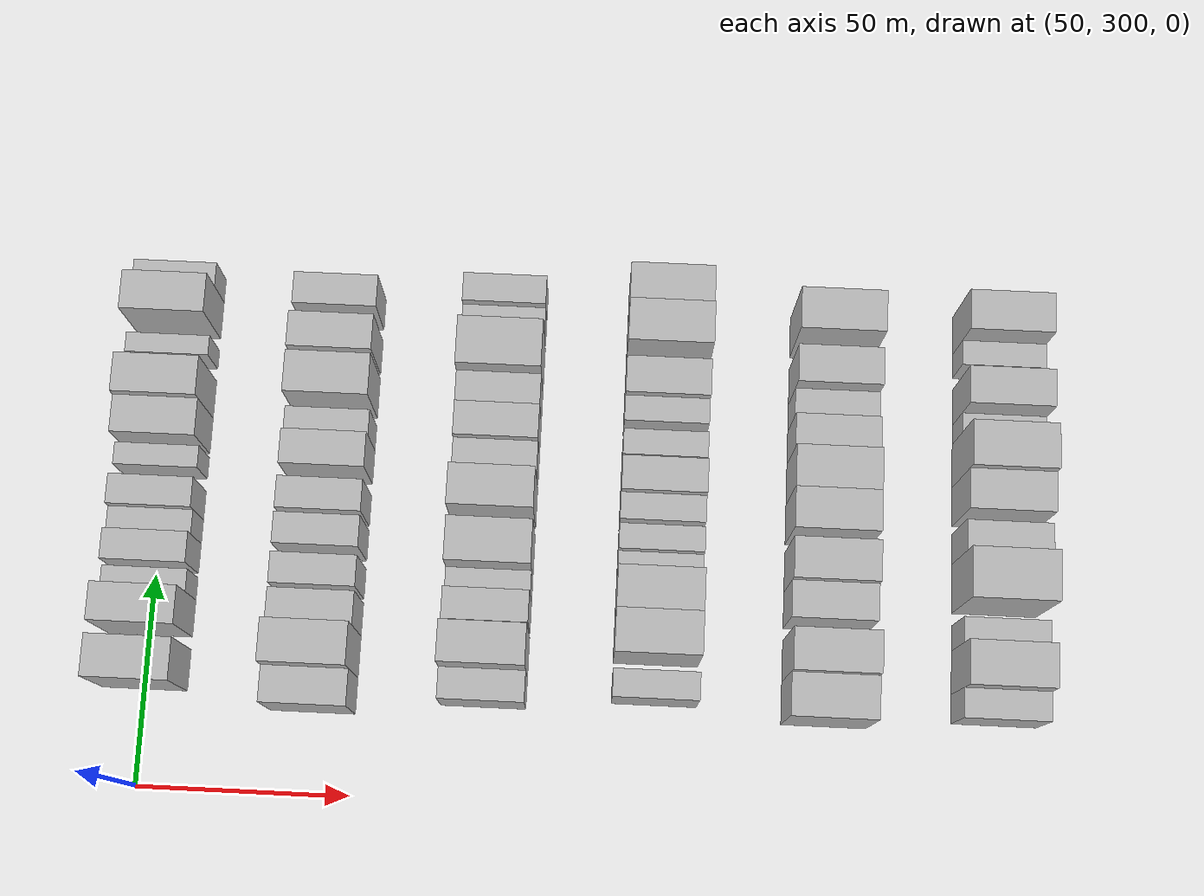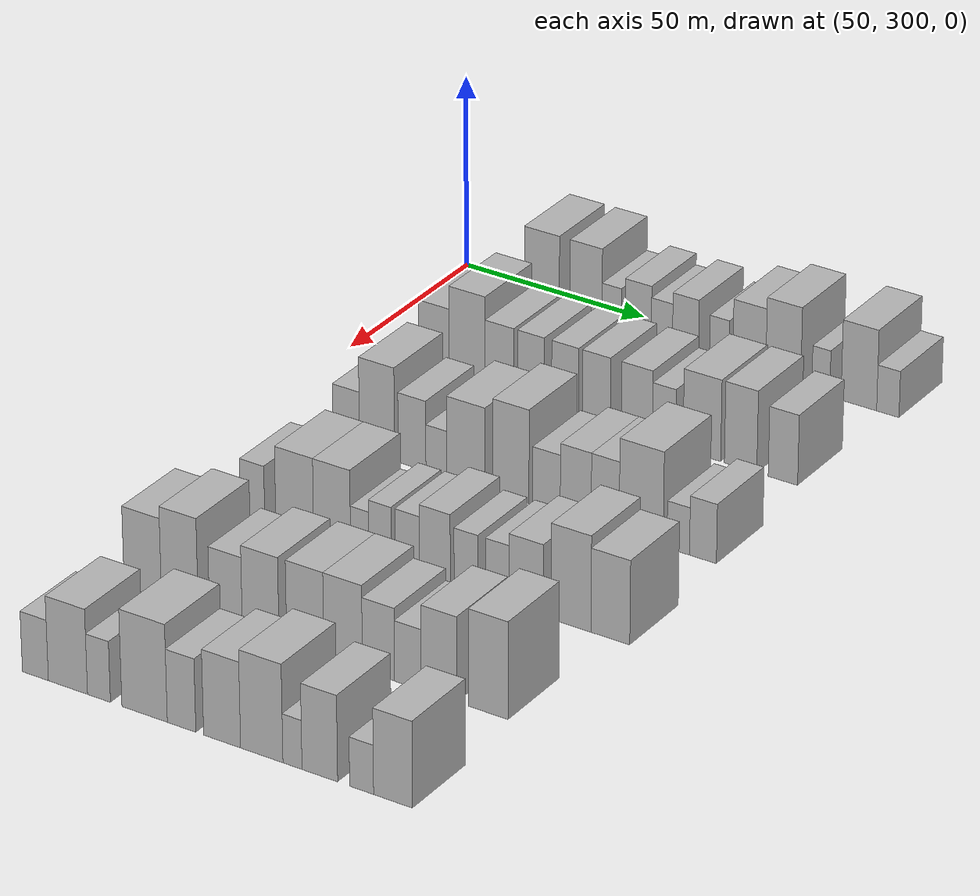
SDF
<sdf version="1.6">
 <world name="default">
  <model name="building_108">
   <static>1</static>
   <pose>50.0000 327.6701 0 0.000000 0.000000 0.000000</pose>
   <link name="link">
    <pose>0 0 10.50 0 0 0</pose>
    <collision name="collision"><geometry><box><size>20.0000 9.8355 21.0000</size></box></geometry></collision>
    <visual name="visual">
     <cast_shadows>0</cast_shadows>
     <geometry><box><size>20.0000 9.8355 21.0000</size></box></geometry>
     <material>
      <script>
       <uri>model://HANNAS_wall/materials/scripts</uri>
       <uri>model://HANNAS_wall/materials/textures</uri>
       <name>vrc/HANNAS_wall</name>
      </script>
     </material>
    </visual>
   </link>
  </model>
  <model name="building_109">
   <static>1</static>
   <pose>50.0000 340.0471 0 0.000000 0.000000 0.000000</pose>
   <link name="link">
    <pose>0 0 10.50 0 0 0</pose>
    <collision name="collision"><geometry><box><size>20.0000 8.9186 21.0000</size></box></geometry></collision>
    <visual name="visual">
     <cast_shadows>0</cast_shadows>
     <geometry><box><size>20.0000 8.9186 21.0000</size></box></geometry>
     <material>
      <script>
       <uri>model://HANNAS_wall/materials/scripts</uri>
       <uri>model://HANNAS_wall/materials/textures</uri>
       <name>vrc/HANNAS_wall</name>
      </script>
     </material>
    </visual>
   </link>
  </model>
  <model name="building_110">
   <static>1</static>
   <pose>50.0000 347.1937 0 0.000000 0.000000 0.000000</pose>
   <link name="link">
    <pose>0 0 6.00 0 0 0</pose>
    <collision name="collision"><geometry><box><size>20.0000 5.3746 12.0000</size></box></geometry></collision>
    <visual name="visual">
     <cast_shadows>0</cast_shadows>
     <geometry><box><size>20.0000 5.3746 12.0000</size></box></geometry>
     <material>
      <script>
       <uri>model://HANNAS_wall/materials/scripts</uri>
       <uri>model://HANNAS_wall/materials/textures</uri>
       <name>vrc/HANNAS_wall</name>
      </script>
     </material>
    </visual>
   </link>
  </model>
  <model name="building_111">
   <static>1</static>
   <pose>50.0000 354.5247 0 0.000000 0.000000 0.000000</pose>
   <link name="link">
    <pose>0 0 7.50 0 0 0</pose>
    <collision name="collision"><geometry><box><size>20.0000 7.2872 15.0000</size></box></geometry></collision>
    <visual name="visual">
     <cast_shadows>0</cast_shadows>
     <geometry><box><size>20.0000 7.2872 15.0000</size></box></geometry>
     <material>
      <script>
       <uri>model://HANNAS_wall/materials/scripts</uri>
       <uri>model://HANNAS_wall/materials/textures</uri>
       <name>vrc/HANNAS_wall</name>
      </script>
     </material>
    </visual>
   </link>
  </model>
  <model name="building_112">
   <static>1</static>
   <pose>50.0000 361.0859 0 0.000000 0.000000 0.000000</pose>
   <link name="link">
    <pose>0 0 6.00 0 0 0</pose>
    <collision name="collision"><geometry><box><size>20.0000 5.8353 12.0000</size></box></geometry></collision>
    <visual name="visual">
     <cast_shadows>0</cast_shadows>
     <geometry><box><size>20.0000 5.8353 12.0000</size></box></geometry>
     <material>
      <script>
       <uri>model://HANNAS_wall/materials/scripts</uri>
       <uri>model://HANNAS_wall/materials/textures</uri>
       <name>vrc/HANNAS_wall</name>
      </script>
     </material>
    </visual>
   </link>
  </model>
  <model name="building_113">
   <static>1</static>
   <pose>50.0000 367.5748 0 0.000000 0.000000 0.000000</pose>
   <link name="link">
    <pose>0 0 7.50 0 0 0</pose>
    <collision name="collision"><geometry><box><size>20.0000 7.1423 15.0000</size></box></geometry></collision>
    <visual name="visual">
     <cast_shadows>0</cast_shadows>
     <geometry><box><size>20.0000 7.1423 15.0000</size></box></geometry>
     <material>
      <script>
       <uri>model://HANNAS_wall/materials/scripts</uri>
       <uri>model://HANNAS_wall/materials/textures</uri>
       <name>vrc/HANNAS_wall</name>
      </script>
     </material>
    </visual>
   </link>
  </model>
  <model name="building_114">
   <static>1</static>
   <pose>50.0000 376.8160 0 0.000000 0.000000 0.000000</pose>
   <link name="link">
    <pose>0 0 6.00 0 0 0</pose>
    <collision name="collision"><geometry><box><size>20.0000 5.3402 12.0000</size></box></geometry></collision>
    <visual name="visual">
     <cast_shadows>0</cast_shadows>
     <geometry><box><size>20.0000 5.3402 12.0000</size></box></geometry>
     <material>
      <script>
       <uri>model://HANNAS_wall/materials/scripts</uri>
       <uri>model://HANNAS_wall/materials/textures</uri>
       <name>vrc/HANNAS_wall</name>
      </script>
     </material>
    </visual>
   </link>
  </model>
  <model name="building_115">
   <static>1</static>
   <pose>50.0000 384.9585 0 0.000000 0.000000 0.000000</pose>
   <link name="link">
    <pose>0 0 9.00 0 0 0</pose>
    <collision name="collision"><geometry><box><size>20.0000 8.9447 18.0000</size></box></geometry></collision>
    <visual name="visual">
     <cast_shadows>0</cast_shadows>
     <geometry><box><size>20.0000 8.9447 18.0000</size></box></geometry>
     <material>
      <script>
       <uri>model://HANNAS_wall/materials/scripts</uri>
       <uri>model://HANNAS_wall/materials/textures</uri>
       <name>vrc/HANNAS_wall</name>
      </script>
     </material>
    </visual>
   </link>
  </model>
  <model name="building_116">
   <static>1</static>
   <pose>50.0000 394.1420 0 0.000000 0.000000 0.000000</pose>
   <link name="link">
    <pose>0 0 10.50 0 0 0</pose>
    <collision name="collision"><geometry><box><size>20.0000 9.4224 21.0000</size></box></geometry></collision>
    <visual name="visual">
     <cast_shadows>0</cast_shadows>
     <geometry><box><size>20.0000 9.4224 21.0000</size></box></geometry>
     <material>
      <script>
       <uri>model://HANNAS_wall/materials/scripts</uri>
       <uri>model://HANNAS_wall/materials/textures</uri>
       <name>vrc/HANNAS_wall</name>
      </script>
     </material>
    </visual>
   </link>
  </model>
  <model name="building_117">
   <static>1</static>
   <pose>50.0000 404.2622 0 0.000000 0.000000 0.000000</pose>
   <link name="link">
    <pose>0 0 6.00 0 0 0</pose>
    <collision name="collision"><geometry><box><size>20.0000 4.8180 12.0000</size></box></geometry></collision>
    <visual name="visual">
     <cast_shadows>0</cast_shadows>
     <geometry><box><size>20.0000 4.8180 12.0000</size></box></geometry>
     <material>
      <script>
       <uri>model://HANNAS_wall/materials/scripts</uri>
       <uri>model://HANNAS_wall/materials/textures</uri>
       <name>vrc/HANNAS_wall</name>
      </script>
     </material>
    </visual>
   </link>
  </model>
  <model name="building_118">
   <static>1</static>
   <pose>50.0000 414.4103 0 0.000000 0.000000 0.000000</pose>
   <link name="link">
    <pose>0 0 10.50 0 0 0</pose>
    <collision name="collision"><geometry><box><size>20.0000 9.4782 21.0000</size></box></geometry></collision>
    <visual name="visual">
     <cast_shadows>0</cast_shadows>
     <geometry><box><size>20.0000 9.4782 21.0000</size></box></geometry>
     <material>
      <script>
       <uri>model://HANNAS_wall/materials/scripts</uri>
       <uri>model://HANNAS_wall/materials/textures</uri>
       <name>vrc/HANNAS_wall</name>
      </script>
     </material>
    </visual>
   </link>
  </model>
  <model name="building_119">
   <static>1</static>
   <pose>50.0000 422.1133 0 0.000000 0.000000 0.000000</pose>
   <link name="link">
    <pose>0 0 6.00 0 0 0</pose>
    <collision name="collision"><geometry><box><size>20.0000 5.9277 12.0000</size></box></geometry></collision>
    <visual name="visual">
     <cast_shadows>0</cast_shadows>
     <geometry><box><size>20.0000 5.9277 12.0000</size></box></geometry>
     <material>
      <script>
       <uri>model://HANNAS_wall/materials/scripts</uri>
       <uri>model://HANNAS_wall/materials/textures</uri>
       <name>vrc/HANNAS_wall</name>
      </script>
     </material>
    </visual>
   </link>
  </model>
  <model name="building_248">
   <static>1</static>
   <pose>90.0000 323.4488 0 0.000000 0.000000 0.000000</pose>
   <link name="link">
    <pose>0 0 9.00 0 0 0</pose>
    <collision name="collision"><geometry><box><size>20.0000 8.5177 18.0000</size></box></geometry></collision>
    <visual name="visual">
     <cast_shadows>0</cast_shadows>
     <geometry><box><size>20.0000 8.5177 18.0000</size></box></geometry>
     <material>
      <script>
       <uri>model://HANNAS_wall/materials/scripts</uri>
       <uri>model://HANNAS_wall/materials/textures</uri>
       <name>vrc/HANNAS_wall</name>
      </script>
     </material>
    </visual>
   </link>
  </model>
  <model name="building_249">
   <static>1</static>
   <pose>90.0000 332.6952 0 0.000000 0.000000 0.000000</pose>
   <link name="link">
    <pose>0 0 12.00 0 0 0</pose>
    <collision name="collision"><geometry><box><size>20.0000 9.9750 24.0000</size></box></geometry></collision>
    <visual name="visual">
     <cast_shadows>0</cast_shadows>
     <geometry><box><size>20.0000 9.9750 24.0000</size></box></geometry>
     <material>
      <script>
       <uri>model://HANNAS_wall/materials/scripts</uri>
       <uri>model://HANNAS_wall/materials/textures</uri>
       <name>vrc/HANNAS_wall</name>
      </script>
     </material>
    </visual>
   </link>
  </model>
  <model name="building_250">
   <static>1</static>
   <pose>90.0000 341.6424 0 0.000000 0.000000 0.000000</pose>
   <link name="link">
    <pose>0 0 9.00 0 0 0</pose>
    <collision name="collision"><geometry><box><size>20.0000 7.9195 18.0000</size></box></geometry></collision>
    <visual name="visual">
     <cast_shadows>0</cast_shadows>
     <geometry><box><size>20.0000 7.9195 18.0000</size></box></geometry>
     <material>
      <script>
       <uri>model://HANNAS_wall/materials/scripts</uri>
       <uri>model://HANNAS_wall/materials/textures</uri>
       <name>vrc/HANNAS_wall</name>
      </script>
     </material>
    </visual>
   </link>
  </model>
  <model name="building_251">
   <static>1</static>
   <pose>90.0000 350.2497 0 0.000000 0.000000 0.000000</pose>
   <link name="link">
    <pose>0 0 9.00 0 0 0</pose>
    <collision name="collision"><geometry><box><size>20.0000 7.2952 18.0000</size></box></geometry></collision>
    <visual name="visual">
     <cast_shadows>0</cast_shadows>
     <geometry><box><size>20.0000 7.2952 18.0000</size></box></geometry>
     <material>
      <script>
       <uri>model://HANNAS_wall/materials/scripts</uri>
       <uri>model://HANNAS_wall/materials/textures</uri>
       <name>vrc/HANNAS_wall</name>
      </script>
     </material>
    </visual>
   </link>
  </model>
  <model name="building_252">
   <static>1</static>
   <pose>90.0000 359.5843 0 0.000000 0.000000 0.000000</pose>
   <link name="link">
    <pose>0 0 9.00 0 0 0</pose>
    <collision name="collision"><geometry><box><size>20.0000 7.3740 18.0000</size></box></geometry></collision>
    <visual name="visual">
     <cast_shadows>0</cast_shadows>
     <geometry><box><size>20.0000 7.3740 18.0000</size></box></geometry>
     <material>
      <script>
       <uri>model://HANNAS_wall/materials/scripts</uri>
       <uri>model://HANNAS_wall/materials/textures</uri>
       <name>vrc/HANNAS_wall</name>
      </script>
     </material>
    </visual>
   </link>
  </model>
  <model name="building_253">
   <static>1</static>
   <pose>90.0000 368.0543 0 0.000000 0.000000 0.000000</pose>
   <link name="link">
    <pose>0 0 9.00 0 0 0</pose>
    <collision name="collision"><geometry><box><size>20.0000 7.5661 18.0000</size></box></geometry></collision>
    <visual name="visual">
     <cast_shadows>0</cast_shadows>
     <geometry><box><size>20.0000 7.5661 18.0000</size></box></geometry>
     <material>
      <script>
       <uri>model://HANNAS_wall/materials/scripts</uri>
       <uri>model://HANNAS_wall/materials/textures</uri>
       <name>vrc/HANNAS_wall</name>
      </script>
     </material>
    </visual>
   </link>
  </model>
  <model name="building_254">
   <static>1</static>
   <pose>90.0000 379.0158 0 0.000000 0.000000 0.000000</pose>
   <link name="link">
    <pose>0 0 9.00 0 0 0</pose>
    <collision name="collision"><geometry><box><size>20.0000 8.3568 18.0000</size></box></geometry></collision>
    <visual name="visual">
     <cast_shadows>0</cast_shadows>
     <geometry><box><size>20.0000 8.3568 18.0000</size></box></geometry>
     <material>
      <script>
       <uri>model://HANNAS_wall/materials/scripts</uri>
       <uri>model://HANNAS_wall/materials/textures</uri>
       <name>vrc/HANNAS_wall</name>
      </script>
     </material>
    </visual>
   </link>
  </model>
  <model name="building_255">
   <static>1</static>
   <pose>90.0000 386.2844 0 0.000000 0.000000 0.000000</pose>
   <link name="link">
    <pose>0 0 7.50 0 0 0</pose>
    <collision name="collision"><geometry><box><size>20.0000 6.1805 15.0000</size></box></geometry></collision>
    <visual name="visual">
     <cast_shadows>0</cast_shadows>
     <geometry><box><size>20.0000 6.1805 15.0000</size></box></geometry>
     <material>
      <script>
       <uri>model://HANNAS_wall/materials/scripts</uri>
       <uri>model://HANNAS_wall/materials/textures</uri>
       <name>vrc/HANNAS_wall</name>
      </script>
     </material>
    </visual>
   </link>
  </model>
  <model name="building_256">
   <static>1</static>
   <pose>90.0000 396.3751 0 0.000000 0.000000 0.000000</pose>
   <link name="link">
    <pose>0 0 10.50 0 0 0</pose>
    <collision name="collision"><geometry><box><size>20.0000 10.0008 21.0000</size></box></geometry></collision>
    <visual name="visual">
     <cast_shadows>0</cast_shadows>
     <geometry><box><size>20.0000 10.0008 21.0000</size></box></geometry>
     <material>
      <script>
       <uri>model://HANNAS_wall/materials/scripts</uri>
       <uri>model://HANNAS_wall/materials/textures</uri>
       <name>vrc/HANNAS_wall</name>
      </script>
     </material>
    </visual>
   </link>
  </model>
  <model name="building_257">
   <static>1</static>
   <pose>90.0000 406.6495 0 0.000000 0.000000 0.000000</pose>
   <link name="link">
    <pose>0 0 10.50 0 0 0</pose>
    <collision name="collision"><geometry><box><size>20.0000 8.5481 21.0000</size></box></geometry></collision>
    <visual name="visual">
     <cast_shadows>0</cast_shadows>
     <geometry><box><size>20.0000 8.5481 21.0000</size></box></geometry>
     <material>
      <script>
       <uri>model://HANNAS_wall/materials/scripts</uri>
       <uri>model://HANNAS_wall/materials/textures</uri>
       <name>vrc/HANNAS_wall</name>
      </script>
     </material>
    </visual>
   </link>
  </model>
  <model name="building_258">
   <static>1</static>
   <pose>90.0000 417.7794 0 0.000000 0.000000 0.000000</pose>
   <link name="link">
    <pose>0 0 9.00 0 0 0</pose>
    <collision name="collision"><geometry><box><size>20.0000 7.7115 18.0000</size></box></geometry></collision>
    <visual name="visual">
     <cast_shadows>0</cast_shadows>
     <geometry><box><size>20.0000 7.7115 18.0000</size></box></geometry>
     <material>
      <script>
       <uri>model://HANNAS_wall/materials/scripts</uri>
       <uri>model://HANNAS_wall/materials/textures</uri>
       <name>vrc/HANNAS_wall</name>
      </script>
     </material>
    </visual>
   </link>
  </model>
  <model name="building_388">
   <static>1</static>
   <pose>130.0000 325.9228 0 0.000000 0.000000 0.000000</pose>
   <link name="link">
    <pose>0 0 7.50 0 0 0</pose>
    <collision name="collision"><geometry><box><size>20.0000 7.3181 15.0000</size></box></geometry></collision>
    <visual name="visual">
     <cast_shadows>0</cast_shadows>
     <geometry><box><size>20.0000 7.3181 15.0000</size></box></geometry>
     <material>
      <script>
       <uri>model://HANNAS_wall/materials/scripts</uri>
       <uri>model://HANNAS_wall/materials/textures</uri>
       <name>vrc/HANNAS_wall</name>
      </script>
     </material>
    </visual>
   </link>
  </model>
  <model name="building_389">
   <static>1</static>
   <pose>130.0000 334.3830 0 0.000000 0.000000 0.000000</pose>
   <link name="link">
    <pose>0 0 12.00 0 0 0</pose>
    <collision name="collision"><geometry><box><size>20.0000 9.6024 24.0000</size></box></geometry></collision>
    <visual name="visual">
     <cast_shadows>0</cast_shadows>
     <geometry><box><size>20.0000 9.6024 24.0000</size></box></geometry>
     <material>
      <script>
       <uri>model://HANNAS_wall/materials/scripts</uri>
       <uri>model://HANNAS_wall/materials/textures</uri>
       <name>vrc/HANNAS_wall</name>
      </script>
     </material>
    </visual>
   </link>
  </model>
  <model name="building_390">
   <static>1</static>
   <pose>130.0000 343.9438 0 0.000000 0.000000 0.000000</pose>
   <link name="link">
    <pose>0 0 9.00 0 0 0</pose>
    <collision name="collision"><geometry><box><size>20.0000 7.5192 18.0000</size></box></geometry></collision>
    <visual name="visual">
     <cast_shadows>0</cast_shadows>
     <geometry><box><size>20.0000 7.5192 18.0000</size></box></geometry>
     <material>
      <script>
       <uri>model://HANNAS_wall/materials/scripts</uri>
       <uri>model://HANNAS_wall/materials/textures</uri>
       <name>vrc/HANNAS_wall</name>
      </script>
     </material>
    </visual>
   </link>
  </model>
  <model name="building_391">
   <static>1</static>
   <pose>130.0000 350.5058 0 0.000000 0.000000 0.000000</pose>
   <link name="link">
    <pose>0 0 6.00 0 0 0</pose>
    <collision name="collision"><geometry><box><size>20.0000 5.6047 12.0000</size></box></geometry></collision>
    <visual name="visual">
     <cast_shadows>0</cast_shadows>
     <geometry><box><size>20.0000 5.6047 12.0000</size></box></geometry>
     <material>
      <script>
       <uri>model://HANNAS_wall/materials/scripts</uri>
       <uri>model://HANNAS_wall/materials/textures</uri>
       <name>vrc/HANNAS_wall</name>
      </script>
     </material>
    </visual>
   </link>
  </model>
  <model name="building_392">
   <static>1</static>
   <pose>130.0000 358.5032 0 0.000000 0.000000 0.000000</pose>
   <link name="link">
    <pose>0 0 10.50 0 0 0</pose>
    <collision name="collision"><geometry><box><size>20.0000 10.3900 21.0000</size></box></geometry></collision>
    <visual name="visual">
     <cast_shadows>0</cast_shadows>
     <geometry><box><size>20.0000 10.3900 21.0000</size></box></geometry>
     <material>
      <script>
       <uri>model://HANNAS_wall/materials/scripts</uri>
       <uri>model://HANNAS_wall/materials/textures</uri>
       <name>vrc/HANNAS_wall</name>
      </script>
     </material>
    </visual>
   </link>
  </model>
  <model name="building_393">
   <static>1</static>
   <pose>130.0000 370.5416 0 0.000000 0.000000 0.000000</pose>
   <link name="link">
    <pose>0 0 12.00 0 0 0</pose>
    <collision name="collision"><geometry><box><size>20.0000 9.6870 24.0000</size></box></geometry></collision>
    <visual name="visual">
     <cast_shadows>0</cast_shadows>
     <geometry><box><size>20.0000 9.6870 24.0000</size></box></geometry>
     <material>
      <script>
       <uri>model://HANNAS_wall/materials/scripts</uri>
       <uri>model://HANNAS_wall/materials/textures</uri>
       <name>vrc/HANNAS_wall</name>
      </script>
     </material>
    </visual>
   </link>
  </model>
  <model name="building_394">
   <static>1</static>
   <pose>130.0000 380.0307 0 0.000000 0.000000 0.000000</pose>
   <link name="link">
    <pose>0 0 7.50 0 0 0</pose>
    <collision name="collision"><geometry><box><size>20.0000 7.2911 15.0000</size></box></geometry></collision>
    <visual name="visual">
     <cast_shadows>0</cast_shadows>
     <geometry><box><size>20.0000 7.2911 15.0000</size></box></geometry>
     <material>
      <script>
       <uri>model://HANNAS_wall/materials/scripts</uri>
       <uri>model://HANNAS_wall/materials/textures</uri>
       <name>vrc/HANNAS_wall</name>
      </script>
     </material>
    </visual>
   </link>
  </model>
  <model name="building_395">
   <static>1</static>
   <pose>130.0000 387.7671 0 0.000000 0.000000 0.000000</pose>
   <link name="link">
    <pose>0 0 9.00 0 0 0</pose>
    <collision name="collision"><geometry><box><size>20.0000 8.1817 18.0000</size></box></geometry></collision>
    <visual name="visual">
     <cast_shadows>0</cast_shadows>
     <geometry><box><size>20.0000 8.1817 18.0000</size></box></geometry>
     <material>
      <script>
       <uri>model://HANNAS_wall/materials/scripts</uri>
       <uri>model://HANNAS_wall/materials/textures</uri>
       <name>vrc/HANNAS_wall</name>
      </script>
     </material>
    </visual>
   </link>
  </model>
  <model name="building_396">
   <static>1</static>
   <pose>130.0000 395.5273 0 0.000000 0.000000 0.000000</pose>
   <link name="link">
    <pose>0 0 9.00 0 0 0</pose>
    <collision name="collision"><geometry><box><size>20.0000 7.3387 18.0000</size></box></geometry></collision>
    <visual name="visual">
     <cast_shadows>0</cast_shadows>
     <geometry><box><size>20.0000 7.3387 18.0000</size></box></geometry>
     <material>
      <script>
       <uri>model://HANNAS_wall/materials/scripts</uri>
       <uri>model://HANNAS_wall/materials/textures</uri>
       <name>vrc/HANNAS_wall</name>
      </script>
     </material>
    </visual>
   </link>
  </model>
  <model name="building_397">
   <static>1</static>
   <pose>130.0000 404.9335 0 0.000000 0.000000 0.000000</pose>
   <link name="link">
    <pose>0 0 12.00 0 0 0</pose>
    <collision name="collision"><geometry><box><size>20.0000 11.4736 24.0000</size></box></geometry></collision>
    <visual name="visual">
     <cast_shadows>0</cast_shadows>
     <geometry><box><size>20.0000 11.4736 24.0000</size></box></geometry>
     <material>
      <script>
       <uri>model://HANNAS_wall/materials/scripts</uri>
       <uri>model://HANNAS_wall/materials/textures</uri>
       <name>vrc/HANNAS_wall</name>
      </script>
     </material>
    </visual>
   </link>
  </model>
  <model name="building_398">
   <static>1</static>
   <pose>130.0000 414.5922 0 0.000000 0.000000 0.000000</pose>
   <link name="link">
    <pose>0 0 6.00 0 0 0</pose>
    <collision name="collision"><geometry><box><size>20.0000 5.8438 12.0000</size></box></geometry></collision>
    <visual name="visual">
     <cast_shadows>0</cast_shadows>
     <geometry><box><size>20.0000 5.8438 12.0000</size></box></geometry>
     <material>
      <script>
       <uri>model://HANNAS_wall/materials/scripts</uri>
       <uri>model://HANNAS_wall/materials/textures</uri>
       <name>vrc/HANNAS_wall</name>
      </script>
     </material>
    </visual>
   </link>
  </model>
  <model name="building_399">
   <static>1</static>
   <pose>130.0000 420.9865 0 0.000000 0.000000 0.000000</pose>
   <link name="link">
    <pose>0 0 7.50 0 0 0</pose>
    <collision name="collision"><geometry><box><size>20.0000 6.9448 15.0000</size></box></geometry></collision>
    <visual name="visual">
     <cast_shadows>0</cast_shadows>
     <geometry><box><size>20.0000 6.9448 15.0000</size></box></geometry>
     <material>
      <script>
       <uri>model://HANNAS_wall/materials/scripts</uri>
       <uri>model://HANNAS_wall/materials/textures</uri>
       <name>vrc/HANNAS_wall</name>
      </script>
     </material>
    </visual>
   </link>
  </model>
  <model name="building_520">
   <static>1</static>
   <pose>170.0000 327.8702 0 0.000000 0.000000 0.000000</pose>
   <link name="link">
    <pose>0 0 7.50 0 0 0</pose>
    <collision name="collision"><geometry><box><size>20.0000 6.5540 15.0000</size></box></geometry></collision>
    <visual name="visual">
     <cast_shadows>0</cast_shadows>
     <geometry><box><size>20.0000 6.5540 15.0000</size></box></geometry>
     <material>
      <script>
       <uri>model://HANNAS_wall/materials/scripts</uri>
       <uri>model://HANNAS_wall/materials/textures</uri>
       <name>vrc/HANNAS_wall</name>
      </script>
     </material>
    </visual>
   </link>
  </model>
  <model name="building_521">
   <static>1</static>
   <pose>170.0000 339.2528 0 0.000000 0.000000 0.000000</pose>
   <link name="link">
    <pose>0 0 10.50 0 0 0</pose>
    <collision name="collision"><geometry><box><size>20.0000 10.2112 21.0000</size></box></geometry></collision>
    <visual name="visual">
     <cast_shadows>0</cast_shadows>
     <geometry><box><size>20.0000 10.2112 21.0000</size></box></geometry>
     <material>
      <script>
       <uri>model://HANNAS_wall/materials/scripts</uri>
       <uri>model://HANNAS_wall/materials/textures</uri>
       <name>vrc/HANNAS_wall</name>
      </script>
     </material>
    </visual>
   </link>
  </model>
  <model name="building_522">
   <static>1</static>
   <pose>170.0000 349.2987 0 0.000000 0.000000 0.000000</pose>
   <link name="link">
    <pose>0 0 10.50 0 0 0</pose>
    <collision name="collision"><geometry><box><size>20.0000 9.8807 21.0000</size></box></geometry></collision>
    <visual name="visual">
     <cast_shadows>0</cast_shadows>
     <geometry><box><size>20.0000 9.8807 21.0000</size></box></geometry>
     <material>
      <script>
       <uri>model://HANNAS_wall/materials/scripts</uri>
       <uri>model://HANNAS_wall/materials/textures</uri>
       <name>vrc/HANNAS_wall</name>
      </script>
     </material>
    </visual>
   </link>
  </model>
  <model name="building_523">
   <static>1</static>
   <pose>170.0000 356.6484 0 0.000000 0.000000 0.000000</pose>
   <link name="link">
    <pose>0 0 6.00 0 0 0</pose>
    <collision name="collision"><geometry><box><size>20.0000 4.8186 12.0000</size></box></geometry></collision>
    <visual name="visual">
     <cast_shadows>0</cast_shadows>
     <geometry><box><size>20.0000 4.8186 12.0000</size></box></geometry>
     <material>
      <script>
       <uri>model://HANNAS_wall/materials/scripts</uri>
       <uri>model://HANNAS_wall/materials/textures</uri>
       <name>vrc/HANNAS_wall</name>
      </script>
     </material>
    </visual>
   </link>
  </model>
  <model name="building_524">
   <static>1</static>
   <pose>170.0000 362.0639 0 0.000000 0.000000 0.000000</pose>
   <link name="link">
    <pose>0 0 7.50 0 0 0</pose>
    <collision name="collision"><geometry><box><size>20.0000 6.0124 15.0000</size></box></geometry></collision>
    <visual name="visual">
     <cast_shadows>0</cast_shadows>
     <geometry><box><size>20.0000 6.0124 15.0000</size></box></geometry>
     <material>
      <script>
       <uri>model://HANNAS_wall/materials/scripts</uri>
       <uri>model://HANNAS_wall/materials/textures</uri>
       <name>vrc/HANNAS_wall</name>
      </script>
     </material>
    </visual>
   </link>
  </model>
  <model name="building_525">
   <static>1</static>
   <pose>170.0000 369.2673 0 0.000000 0.000000 0.000000</pose>
   <link name="link">
    <pose>0 0 7.50 0 0 0</pose>
    <collision name="collision"><geometry><box><size>20.0000 6.3944 15.0000</size></box></geometry></collision>
    <visual name="visual">
     <cast_shadows>0</cast_shadows>
     <geometry><box><size>20.0000 6.3944 15.0000</size></box></geometry>
     <material>
      <script>
       <uri>model://HANNAS_wall/materials/scripts</uri>
       <uri>model://HANNAS_wall/materials/textures</uri>
       <name>vrc/HANNAS_wall</name>
      </script>
     </material>
    </visual>
   </link>
  </model>
  <model name="building_526">
   <static>1</static>
   <pose>170.0000 376.5287 0 0.000000 0.000000 0.000000</pose>
   <link name="link">
    <pose>0 0 9.00 0 0 0</pose>
    <collision name="collision"><geometry><box><size>20.0000 8.1284 18.0000</size></box></geometry></collision>
    <visual name="visual">
     <cast_shadows>0</cast_shadows>
     <geometry><box><size>20.0000 8.1284 18.0000</size></box></geometry>
     <material>
      <script>
       <uri>model://HANNAS_wall/materials/scripts</uri>
       <uri>model://HANNAS_wall/materials/textures</uri>
       <name>vrc/HANNAS_wall</name>
      </script>
     </material>
    </visual>
   </link>
  </model>
  <model name="building_527">
   <static>1</static>
   <pose>170.0000 384.6836 0 0.000000 0.000000 0.000000</pose>
   <link name="link">
    <pose>0 0 7.50 0 0 0</pose>
    <collision name="collision"><geometry><box><size>20.0000 6.1813 15.0000</size></box></geometry></collision>
    <visual name="visual">
     <cast_shadows>0</cast_shadows>
     <geometry><box><size>20.0000 6.1813 15.0000</size></box></geometry>
     <material>
      <script>
       <uri>model://HANNAS_wall/materials/scripts</uri>
       <uri>model://HANNAS_wall/materials/textures</uri>
       <name>vrc/HANNAS_wall</name>
      </script>
     </material>
    </visual>
   </link>
  </model>
  <model name="building_528">
   <static>1</static>
   <pose>170.0000 392.8316 0 0.000000 0.000000 0.000000</pose>
   <link name="link">
    <pose>0 0 7.50 0 0 0</pose>
    <collision name="collision"><geometry><box><size>20.0000 6.1148 15.0000</size></box></geometry></collision>
    <visual name="visual">
     <cast_shadows>0</cast_shadows>
     <geometry><box><size>20.0000 6.1148 15.0000</size></box></geometry>
     <material>
      <script>
       <uri>model://HANNAS_wall/materials/scripts</uri>
       <uri>model://HANNAS_wall/materials/textures</uri>
       <name>vrc/HANNAS_wall</name>
      </script>
     </material>
    </visual>
   </link>
  </model>
  <model name="building_529">
   <static>1</static>
   <pose>170.0000 400.3214 0 0.000000 0.000000 0.000000</pose>
   <link name="link">
    <pose>0 0 9.00 0 0 0</pose>
    <collision name="collision"><geometry><box><size>20.0000 8.8647 18.0000</size></box></geometry></collision>
    <visual name="visual">
     <cast_shadows>0</cast_shadows>
     <geometry><box><size>20.0000 8.8647 18.0000</size></box></geometry>
     <material>
      <script>
       <uri>model://HANNAS_wall/materials/scripts</uri>
       <uri>model://HANNAS_wall/materials/textures</uri>
       <name>vrc/HANNAS_wall</name>
      </script>
     </material>
    </visual>
   </link>
  </model>
  <model name="building_530">
   <static>1</static>
   <pose>170.0000 411.8530 0 0.000000 0.000000 0.000000</pose>
   <link name="link">
    <pose>0 0 12.00 0 0 0</pose>
    <collision name="collision"><geometry><box><size>20.0000 10.1986 24.0000</size></box></geometry></collision>
    <visual name="visual">
     <cast_shadows>0</cast_shadows>
     <geometry><box><size>20.0000 10.1986 24.0000</size></box></geometry>
     <material>
      <script>
       <uri>model://HANNAS_wall/materials/scripts</uri>
       <uri>model://HANNAS_wall/materials/textures</uri>
       <name>vrc/HANNAS_wall</name>
      </script>
     </material>
    </visual>
   </link>
  </model>
  <model name="building_531">
   <static>1</static>
   <pose>170.0000 421.9008 0 0.000000 0.000000 0.000000</pose>
   <link name="link">
    <pose>0 0 10.50 0 0 0</pose>
    <collision name="collision"><geometry><box><size>20.0000 9.8970 21.0000</size></box></geometry></collision>
    <visual name="visual">
     <cast_shadows>0</cast_shadows>
     <geometry><box><size>20.0000 9.8970 21.0000</size></box></geometry>
     <material>
      <script>
       <uri>model://HANNAS_wall/materials/scripts</uri>
       <uri>model://HANNAS_wall/materials/textures</uri>
       <name>vrc/HANNAS_wall</name>
      </script>
     </material>
    </visual>
   </link>
  </model>
  <model name="building_656">
   <static>1</static>
   <pose>210.0000 326.5439 0 0.000000 0.000000 0.000000</pose>
   <link name="link">
    <pose>0 0 10.50 0 0 0</pose>
    <collision name="collision"><geometry><box><size>20.0000 10.0200 21.0000</size></box></geometry></collision>
    <visual name="visual">
     <cast_shadows>0</cast_shadows>
     <geometry><box><size>20.0000 10.0200 21.0000</size></box></geometry>
     <material>
      <script>
       <uri>model://HANNAS_wall/materials/scripts</uri>
       <uri>model://HANNAS_wall/materials/textures</uri>
       <name>vrc/HANNAS_wall</name>
      </script>
     </material>
    </visual>
   </link>
  </model>
  <model name="building_657">
   <static>1</static>
   <pose>210.0000 336.4623 0 0.000000 0.000000 0.000000</pose>
   <link name="link">
    <pose>0 0 12.00 0 0 0</pose>
    <collision name="collision"><geometry><box><size>20.0000 9.8168 24.0000</size></box></geometry></collision>
    <visual name="visual">
     <cast_shadows>0</cast_shadows>
     <geometry><box><size>20.0000 9.8168 24.0000</size></box></geometry>
     <material>
      <script>
       <uri>model://HANNAS_wall/materials/scripts</uri>
       <uri>model://HANNAS_wall/materials/textures</uri>
       <name>vrc/HANNAS_wall</name>
      </script>
     </material>
    </visual>
   </link>
  </model>
  <model name="building_658">
   <static>1</static>
   <pose>210.0000 348.7008 0 0.000000 0.000000 0.000000</pose>
   <link name="link">
    <pose>0 0 9.00 0 0 0</pose>
    <collision name="collision"><geometry><box><size>20.0000 8.6602 18.0000</size></box></geometry></collision>
    <visual name="visual">
     <cast_shadows>0</cast_shadows>
     <geometry><box><size>20.0000 8.6602 18.0000</size></box></geometry>
     <material>
      <script>
       <uri>model://HANNAS_wall/materials/scripts</uri>
       <uri>model://HANNAS_wall/materials/textures</uri>
       <name>vrc/HANNAS_wall</name>
      </script>
     </material>
    </visual>
   </link>
  </model>
  <model name="building_659">
   <static>1</static>
   <pose>210.0000 357.8621 0 0.000000 0.000000 0.000000</pose>
   <link name="link">
    <pose>0 0 10.50 0 0 0</pose>
    <collision name="collision"><geometry><box><size>20.0000 9.6624 21.0000</size></box></geometry></collision>
    <visual name="visual">
     <cast_shadows>0</cast_shadows>
     <geometry><box><size>20.0000 9.6624 21.0000</size></box></geometry>
     <material>
      <script>
       <uri>model://HANNAS_wall/materials/scripts</uri>
       <uri>model://HANNAS_wall/materials/textures</uri>
       <name>vrc/HANNAS_wall</name>
      </script>
     </material>
    </visual>
   </link>
  </model>
  <model name="building_660">
   <static>1</static>
   <pose>210.0000 369.5518 0 0.000000 0.000000 0.000000</pose>
   <link name="link">
    <pose>0 0 10.50 0 0 0</pose>
    <collision name="collision"><geometry><box><size>20.0000 9.7170 21.0000</size></box></geometry></collision>
    <visual name="visual">
     <cast_shadows>0</cast_shadows>
     <geometry><box><size>20.0000 9.7170 21.0000</size></box></geometry>
     <material>
      <script>
       <uri>model://HANNAS_wall/materials/scripts</uri>
       <uri>model://HANNAS_wall/materials/textures</uri>
       <name>vrc/HANNAS_wall</name>
      </script>
     </material>
    </visual>
   </link>
  </model>
  <model name="building_661">
   <static>1</static>
   <pose>210.0000 379.3986 0 0.000000 0.000000 0.000000</pose>
   <link name="link">
    <pose>0 0 10.50 0 0 0</pose>
    <collision name="collision"><geometry><box><size>20.0000 9.9766 21.0000</size></box></geometry></collision>
    <visual name="visual">
     <cast_shadows>0</cast_shadows>
     <geometry><box><size>20.0000 9.9766 21.0000</size></box></geometry>
     <material>
      <script>
       <uri>model://HANNAS_wall/materials/scripts</uri>
       <uri>model://HANNAS_wall/materials/textures</uri>
       <name>vrc/HANNAS_wall</name>
      </script>
     </material>
    </visual>
   </link>
  </model>
  <model name="building_662">
   <static>1</static>
   <pose>210.0000 388.5131 0 0.000000 0.000000 0.000000</pose>
   <link name="link">
    <pose>0 0 9.00 0 0 0</pose>
    <collision name="collision"><geometry><box><size>20.0000 8.2525 18.0000</size></box></geometry></collision>
    <visual name="visual">
     <cast_shadows>0</cast_shadows>
     <geometry><box><size>20.0000 8.2525 18.0000</size></box></geometry>
     <material>
      <script>
       <uri>model://HANNAS_wall/materials/scripts</uri>
       <uri>model://HANNAS_wall/materials/textures</uri>
       <name>vrc/HANNAS_wall</name>
      </script>
     </material>
    </visual>
   </link>
  </model>
  <model name="building_663">
   <static>1</static>
   <pose>210.0000 396.0645 0 0.000000 0.000000 0.000000</pose>
   <link name="link">
    <pose>0 0 7.50 0 0 0</pose>
    <collision name="collision"><geometry><box><size>20.0000 6.8502 15.0000</size></box></geometry></collision>
    <visual name="visual">
     <cast_shadows>0</cast_shadows>
     <geometry><box><size>20.0000 6.8502 15.0000</size></box></geometry>
     <material>
      <script>
       <uri>model://HANNAS_wall/materials/scripts</uri>
       <uri>model://HANNAS_wall/materials/textures</uri>
       <name>vrc/HANNAS_wall</name>
      </script>
     </material>
    </visual>
   </link>
  </model>
  <model name="building_664">
   <static>1</static>
   <pose>210.0000 404.0021 0 0.000000 0.000000 0.000000</pose>
   <link name="link">
    <pose>0 0 10.50 0 0 0</pose>
    <collision name="collision"><geometry><box><size>20.0000 9.0250 21.0000</size></box></geometry></collision>
    <visual name="visual">
     <cast_shadows>0</cast_shadows>
     <geometry><box><size>20.0000 9.0250 21.0000</size></box></geometry>
     <material>
      <script>
       <uri>model://HANNAS_wall/materials/scripts</uri>
       <uri>model://HANNAS_wall/materials/textures</uri>
       <name>vrc/HANNAS_wall</name>
      </script>
     </material>
    </visual>
   </link>
  </model>
  <model name="building_665">
   <static>1</static>
   <pose>210.0000 416.5102 0 0.000000 0.000000 0.000000</pose>
   <link name="link">
    <pose>0 0 12.00 0 0 0</pose>
    <collision name="collision"><geometry><box><size>20.0000 9.9912 24.0000</size></box></geometry></collision>
    <visual name="visual">
     <cast_shadows>0</cast_shadows>
     <geometry><box><size>20.0000 9.9912 24.0000</size></box></geometry>
     <material>
      <script>
       <uri>model://HANNAS_wall/materials/scripts</uri>
       <uri>model://HANNAS_wall/materials/textures</uri>
       <name>vrc/HANNAS_wall</name>
      </script>
     </material>
    </visual>
   </link>
  </model>
  <model name="building_787">
   <static>1</static>
   <pose>250.0000 327.0874 0 0.000000 0.000000 0.000000</pose>
   <link name="link">
    <pose>0 0 7.50 0 0 0</pose>
    <collision name="collision"><geometry><box><size>20.0000 6.8980 15.0000</size></box></geometry></collision>
    <visual name="visual">
     <cast_shadows>0</cast_shadows>
     <geometry><box><size>20.0000 6.8980 15.0000</size></box></geometry>
     <material>
      <script>
       <uri>model://HANNAS_wall/materials/scripts</uri>
       <uri>model://HANNAS_wall/materials/textures</uri>
       <name>vrc/HANNAS_wall</name>
      </script>
     </material>
    </visual>
   </link>
  </model>
  <model name="building_788">
   <static>1</static>
   <pose>250.0000 335.6998 0 0.000000 0.000000 0.000000</pose>
   <link name="link">
    <pose>0 0 10.50 0 0 0</pose>
    <collision name="collision"><geometry><box><size>20.0000 10.3267 21.0000</size></box></geometry></collision>
    <visual name="visual">
     <cast_shadows>0</cast_shadows>
     <geometry><box><size>20.0000 10.3267 21.0000</size></box></geometry>
     <material>
      <script>
       <uri>model://HANNAS_wall/materials/scripts</uri>
       <uri>model://HANNAS_wall/materials/textures</uri>
       <name>vrc/HANNAS_wall</name>
      </script>
     </material>
    </visual>
   </link>
  </model>
  <model name="building_789">
   <static>1</static>
   <pose>250.0000 343.8724 0 0.000000 0.000000 0.000000</pose>
   <link name="link">
    <pose>0 0 7.50 0 0 0</pose>
    <collision name="collision"><geometry><box><size>20.0000 6.0184 15.0000</size></box></geometry></collision>
    <visual name="visual">
     <cast_shadows>0</cast_shadows>
     <geometry><box><size>20.0000 6.0184 15.0000</size></box></geometry>
     <material>
      <script>
       <uri>model://HANNAS_wall/materials/scripts</uri>
       <uri>model://HANNAS_wall/materials/textures</uri>
       <name>vrc/HANNAS_wall</name>
      </script>
     </material>
    </visual>
   </link>
  </model>
  <model name="building_790">
   <static>1</static>
   <pose>250.0000 355.7926 0 0.000000 0.000000 0.000000</pose>
   <link name="link">
    <pose>0 0 12.00 0 0 0</pose>
    <collision name="collision"><geometry><box><size>20.0000 11.8221 24.0000</size></box></geometry></collision>
    <visual name="visual">
     <cast_shadows>0</cast_shadows>
     <geometry><box><size>20.0000 11.8221 24.0000</size></box></geometry>
     <material>
      <script>
       <uri>model://HANNAS_wall/materials/scripts</uri>
       <uri>model://HANNAS_wall/materials/textures</uri>
       <name>vrc/HANNAS_wall</name>
      </script>
     </material>
    </visual>
   </link>
  </model>
  <model name="building_791">
   <static>1</static>
   <pose>250.0000 365.3910 0 0.000000 0.000000 0.000000</pose>
   <link name="link">
    <pose>0 0 9.00 0 0 0</pose>
    <collision name="collision"><geometry><box><size>20.0000 7.3746 18.0000</size></box></geometry></collision>
    <visual name="visual">
     <cast_shadows>0</cast_shadows>
     <geometry><box><size>20.0000 7.3746 18.0000</size></box></geometry>
     <material>
      <script>
       <uri>model://HANNAS_wall/materials/scripts</uri>
       <uri>model://HANNAS_wall/materials/textures</uri>
       <name>vrc/HANNAS_wall</name>
      </script>
     </material>
    </visual>
   </link>
  </model>
  <model name="building_792">
   <static>1</static>
   <pose>250.0000 375.8291 0 0.000000 0.000000 0.000000</pose>
   <link name="link">
    <pose>0 0 10.50 0 0 0</pose>
    <collision name="collision"><geometry><box><size>20.0000 9.5016 21.0000</size></box></geometry></collision>
    <visual name="visual">
     <cast_shadows>0</cast_shadows>
     <geometry><box><size>20.0000 9.5016 21.0000</size></box></geometry>
     <material>
      <script>
       <uri>model://HANNAS_wall/materials/scripts</uri>
       <uri>model://HANNAS_wall/materials/textures</uri>
       <name>vrc/HANNAS_wall</name>
      </script>
     </material>
    </visual>
   </link>
  </model>
  <model name="building_793">
   <static>1</static>
   <pose>250.0000 385.9639 0 0.000000 0.000000 0.000000</pose>
   <link name="link">
    <pose>0 0 12.00 0 0 0</pose>
    <collision name="collision"><geometry><box><size>20.0000 10.7681 24.0000</size></box></geometry></collision>
    <visual name="visual">
     <cast_shadows>0</cast_shadows>
     <geometry><box><size>20.0000 10.7681 24.0000</size></box></geometry>
     <material>
      <script>
       <uri>model://HANNAS_wall/materials/scripts</uri>
       <uri>model://HANNAS_wall/materials/textures</uri>
       <name>vrc/HANNAS_wall</name>
      </script>
     </material>
    </visual>
   </link>
  </model>
  <model name="building_794">
   <static>1</static>
   <pose>250.0000 393.7595 0 0.000000 0.000000 0.000000</pose>
   <link name="link">
    <pose>0 0 6.00 0 0 0</pose>
    <collision name="collision"><geometry><box><size>20.0000 4.8229 12.0000</size></box></geometry></collision>
    <visual name="visual">
     <cast_shadows>0</cast_shadows>
     <geometry><box><size>20.0000 4.8229 12.0000</size></box></geometry>
     <material>
      <script>
       <uri>model://HANNAS_wall/materials/scripts</uri>
       <uri>model://HANNAS_wall/materials/textures</uri>
       <name>vrc/HANNAS_wall</name>
      </script>
     </material>
    </visual>
   </link>
  </model>
  <model name="building_795">
   <static>1</static>
   <pose>250.0000 400.6661 0 0.000000 0.000000 0.000000</pose>
   <link name="link">
    <pose>0 0 10.50 0 0 0</pose>
    <collision name="collision"><geometry><box><size>20.0000 8.9903 21.0000</size></box></geometry></collision>
    <visual name="visual">
     <cast_shadows>0</cast_shadows>
     <geometry><box><size>20.0000 8.9903 21.0000</size></box></geometry>
     <material>
      <script>
       <uri>model://HANNAS_wall/materials/scripts</uri>
       <uri>model://HANNAS_wall/materials/textures</uri>
       <name>vrc/HANNAS_wall</name>
      </script>
     </material>
    </visual>
   </link>
  </model>
  <model name="building_796">
   <static>1</static>
   <pose>250.0000 411.1595 0 0.000000 0.000000 0.000000</pose>
   <link name="link">
    <pose>0 0 6.00 0 0 0</pose>
    <collision name="collision"><geometry><box><size>20.0000 5.9965 12.0000</size></box></geometry></collision>
    <visual name="visual">
     <cast_shadows>0</cast_shadows>
     <geometry><box><size>20.0000 5.9965 12.0000</size></box></geometry>
     <material>
      <script>
       <uri>model://HANNAS_wall/materials/scripts</uri>
       <uri>model://HANNAS_wall/materials/textures</uri>
       <name>vrc/HANNAS_wall</name>
      </script>
     </material>
    </visual>
   </link>
  </model>
  <model name="building_797">
   <static>1</static>
   <pose>250.0000 418.9989 0 0.000000 0.000000 0.000000</pose>
   <link name="link">
    <pose>0 0 10.50 0 0 0</pose>
    <collision name="collision"><geometry><box><size>20.0000 9.6823 21.0000</size></box></geometry></collision>
    <visual name="visual">
     <cast_shadows>0</cast_shadows>
     <geometry><box><size>20.0000 9.6823 21.0000</size></box></geometry>
     <material>
      <script>
       <uri>model://HANNAS_wall/materials/scripts</uri>
       <uri>model://HANNAS_wall/materials/textures</uri>
       <name>vrc/HANNAS_wall</name>
      </script>
     </material>
    </visual>
   </link>
  </model>
 </world>
</sdf>
